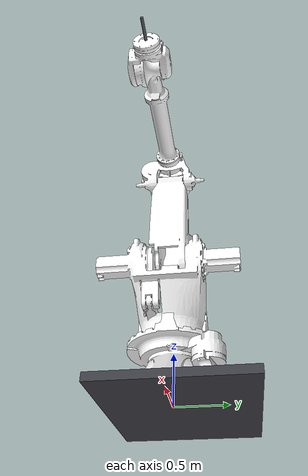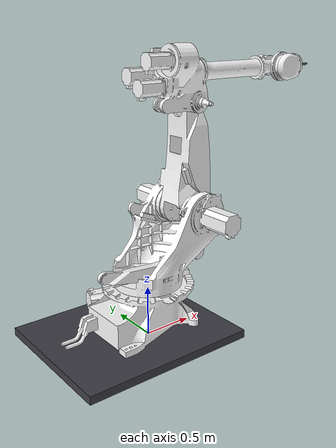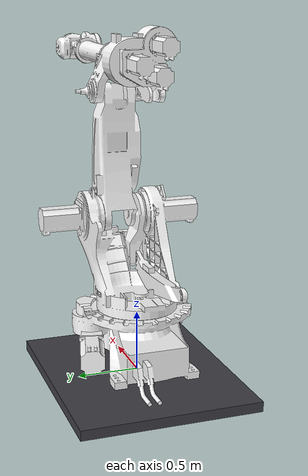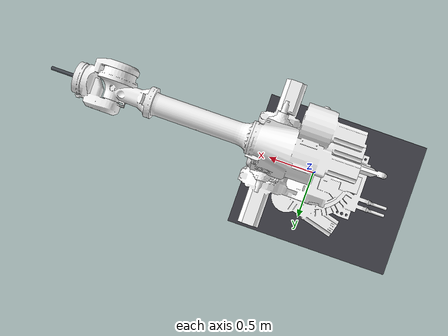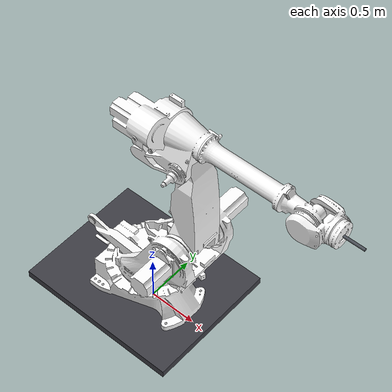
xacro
<?xml version="1.0" encoding="utf-8"?>
<robot
  name="robot_arm3"
  xmlns:xacro="http://www.ros.org/wiki/xacro">
  <xacro:arg
    name="controller_config"
    default="$(find robot_arm3)/config/ros2_controllers_05.yaml" />
  <!-- Tool offsets are relative to the calibrated C4G flange frame. -->
  <xacro:arg name="tcp_xyz" default="0 0 0" />
  <xacro:arg name="tcp_rpy" default="0 0 0" />
  <xacro:arg name="fixture_rod_length" default="0.20" />
  <xacro:arg name="fixture_rod_radius" default="0.013" />
  <xacro:include filename="$(find robot_arm3)/urdf/rod_fixture.xacro" />
  <link
    name="world" />
  <link
    name="c4g_base" />
  <joint
    name="world_to_c4g_base"
    type="fixed">
    <origin
      xyz="0 0 0.08"
      rpy="0 0 0" />
    <parent
      link="world" />
    <child
      link="c4g_base" />
  </joint>
  <link name="pedestal_link">
    <visual>
      <origin xyz="-0.18 0.068663731 -0.04" rpy="0 0 0" />
      <geometry>
        <box size="1.75 1.4243275 0.08" />
      </geometry>
      <material name="pedestal_gray">
        <color rgba="0.24 0.24 0.27 1" />
      </material>
    </visual>
    <collision>
      <origin xyz="-0.18 0.068663731 -0.04" rpy="0 0 0" />
      <geometry>
        <box size="1.75 1.4243275 0.08" />
      </geometry>
    </collision>
  </link>
  <joint name="c4g_base_to_pedestal" type="fixed">
    <parent link="c4g_base" />
    <child link="pedestal_link" />
  </joint>
  <joint
    name="c4g_base_to_base_link"
    type="fixed">
    <origin
      xyz="0 0 0"
      rpy="0 0 3.141592653589793" />
    <parent
      link="c4g_base" />
    <child
      link="base_link" />
  </joint>
  <link
    name="base_link">
    <inertial>
      <origin
        xyz="0.0506232590748008 -0.0548266970438573 0.242008483472295"
        rpy="0 0 0" />
      <mass
        value="216.333805275604" />
      <inertia
        ixx="9.66692923372872"
        ixy="-0.244696571067987"
        ixz="1.32953092256858"
        iyy="16.2820097779157"
        iyz="0.246575547277278"
        izz="17.3203665607122" />
    </inertial>
    <visual>
      <origin
        xyz="0 0 0"
        rpy="0 0 0" />
      <geometry>
        <mesh
          filename="package://robot_arm3/meshes/base_link.STL" />
      </geometry>
      <material
        name="">
        <color
          rgba="1 1 1 1" />
      </material>
    </visual>
    <collision>
      <origin
        xyz="0 0 0"
        rpy="0 0 0" />
      <geometry>
        <mesh
          filename="package://robot_arm3/meshes/base_link.STL" />
      </geometry>
    </collision>
  </link>
  <link
    name="Link_1">
    <inertial>
      <origin
        xyz="-0.325058493715062 0.00618397075804262 -0.425511637199796"
        rpy="0 0 0" />
      <mass
        value="111.586923037547" />
      <inertia
        ixx="12.4549039631623"
        ixy="-0.0871563801452035"
        ixz="-4.75485680618687"
        iyy="12.9548487723321"
        iyz="0.00676482220717287"
        izz="11.5264684996682" />
    </inertial>
    <visual>
      <origin
        xyz="0 0 0"
        rpy="0 0 0" />
      <geometry>
        <mesh
          filename="package://robot_arm3/meshes/Link_1.STL" />
      </geometry>
      <material
        name="">
        <color
          rgba="1 1 1 1" />
      </material>
    </visual>
    <collision>
      <origin
        xyz="0 0 0"
        rpy="0 0 0" />
      <geometry>
        <mesh
          filename="package://robot_arm3/meshes/Link_1.STL" />
      </geometry>
    </collision>
  </link>
  <joint
    name="joint_1"
    type="revolute">
    <origin
      xyz="0 0 0.526"
      rpy="3.1416 0 0" />
    <parent
      link="base_link" />
    <child
      link="Link_1" />
    <axis
      xyz="0 0 1" />
    <limit
      lower="-3.14"
      upper="3.14"
      effort="2000"
      velocity="1" />
  </joint>
  <link
    name="Link_2">
    <inertial>
      <origin
        xyz="0.031571342662649 -0.435757260332822 -0.163306098653328"
        rpy="0 0 0" />
      <mass
        value="27.4443130699897" />
      <inertia
        ixx="3.55366806885427"
        ixy="-0.0051254164443175"
        ixz="0.0440666301114017"
        iyy="0.62115417210786"
        iyz="-0.0409550273093279"
        izz="3.38412801605233" />
    </inertial>
    <visual>
      <origin
        xyz="0 0 0"
        rpy="0 0 0" />
      <geometry>
        <mesh
          filename="package://robot_arm3/meshes/Link_2.STL" />
      </geometry>
      <material
        name="">
        <color
          rgba="1 1 1 1" />
      </material>
    </visual>
    <collision>
      <origin
        xyz="0 0 0"
        rpy="0 0 0" />
      <geometry>
        <mesh
          filename="package://robot_arm3/meshes/Link_2.STL" />
      </geometry>
    </collision>
  </link>
  <joint
    name="joint_2"
    type="revolute">
    <origin
      xyz="-0.46 0.164 -0.614"
      rpy="1.5708 0 3.1416" />
    <parent
      link="Link_1" />
    <child
      link="Link_2" />
    <axis
      xyz="0 0 1" />
    <limit
      lower="-1.3"
      upper="1.3"
      effort="2000"
      velocity="1" />
  </joint>
  <link
    name="Link_3">
    <inertial>
      <origin
        xyz="0.221079386390616 -0.237881703887612 0.216080525737691"
        rpy="0 0 0" />
      <mass
        value="82.8346347307404" />
      <inertia
        ixx="2.68793381829391"
        ixy="0.371511884462949"
        ixz="-0.451791535575442"
        iyy="2.83366677645353"
        iyz="0.290673551230455"
        izz="2.78709509645054" />
    </inertial>
    <visual>
      <origin
        xyz="0 0 0"
        rpy="0 0 0" />
      <geometry>
        <mesh
          filename="package://robot_arm3/meshes/Link_3.STL" />
      </geometry>
      <material
        name="">
        <color
          rgba="1 1 1 1" />
      </material>
    </visual>
    <collision>
      <origin
        xyz="0 0 0"
        rpy="0 0 0" />
      <geometry>
        <mesh
          filename="package://robot_arm3/meshes/Link_3.STL" />
      </geometry>
    </collision>
  </link>
  <joint
    name="joint_7"
    type="revolute">
    <origin
      xyz="0 -1.05 -0.013"
      rpy="-3.1416 0 3.1416" />
    <parent
      link="Link_2" />
    <child
      link="Link_3" />
    <axis
      xyz="0 0 1" />
    <limit
      lower="-3.14"
      upper="3.14"
      effort="2000"
      velocity="1" />
    <dynamics
      damping="0.1"
      friction="0.0" />
  </joint>
  <link
    name="Link_4">
    <inertial>
      <origin
        xyz="-6.82974183821017E-05 -0.0368975826054763 -0.8325256223876"
        rpy="0 0 0" />
      <mass
        value="15.7635262485067" />
      <inertia
        ixx="0.475071298157737"
        ixy="6.4999048005855E-05"
        ixz="1.56982071726133E-05"
        iyy="0.46577831946917"
        iyz="-0.0338725018651429"
        izz="0.115819964731533" />
    </inertial>
    <visual>
      <origin
        xyz="0 0 0"
        rpy="0 0 0" />
      <geometry>
        <mesh
          filename="package://robot_arm3/meshes/Link_4.STL" />
      </geometry>
      <material
        name="">
        <color
          rgba="1 1 1 1" />
      </material>
    </visual>
    <collision>
      <origin
        xyz="0 0 0"
        rpy="0 0 0" />
      <geometry>
        <mesh
          filename="package://robot_arm3/meshes/Link_4.STL" />
      </geometry>
    </collision>
  </link>
  <joint
    name="joint_4"
    type="revolute">
    <origin
      xyz="-0.155 -0.25 0.151"
      rpy="-1.5708 0 -1.5708" />
    <parent
      link="Link_3" />
    <child
      link="Link_4" />
    <axis
      xyz="0 0 1" />
    <limit
      lower="-47.12"
      upper="47.12"
      effort="2000"
      velocity="1" />
  </joint>
  <link
    name="Link_5">
    <inertial>
      <origin
        xyz="-5.74621655591301E-07 0.111056522193111 -0.0691533292600062"
        rpy="0 0 0" />
      <mass
        value="10.599872955139" />
      <inertia
        ixx="0.234707289944283"
        ixy="-1.35752805972676E-07"
        ixz="6.71365643071683E-07"
        iyy="0.175455708338832"
        iyz="0.00474034869122363"
        izz="0.124627798006191" />
    </inertial>
    <visual>
      <origin
        xyz="0 0 0"
        rpy="0 0 0" />
      <geometry>
        <mesh
          filename="package://robot_arm3/meshes/Link_5.STL" />
      </geometry>
      <material
        name="">
        <color
          rgba="1 1 1 1" />
      </material>
    </visual>
    <collision>
      <origin
        xyz="0 0 0"
        rpy="0 0 0" />
      <geometry>
        <mesh
          filename="package://robot_arm3/meshes/Link_5.STL" />
      </geometry>
    </collision>
  </link>
  <joint
    name="joint_5"
    type="revolute">
    <origin
      xyz="0 0.08 -1.05"
      rpy="-1.5708 0 0" />
    <parent
      link="Link_4" />
    <child
      link="Link_5" />
    <axis
      xyz="0 0 1" />
    <limit
      lower="-2.18"
      upper="2.18"
      effort="2000"
      velocity="1" />
  </joint>
  <link
    name="Link_6">
    <inertial>
      <origin
        xyz="-0.000214379735330894 -0.000113813148874417 -0.00366235060272779"
        rpy="0 0 0" />
      <mass
        value="1.11777440271544" />
      <inertia
        ixx="0.00516206301646668"
        ixy="2.0450202245576E-07"
        ixz="-2.30214144734367E-06"
        iyy="0.00515170767564228"
        iyz="3.04297475169887E-06"
        izz="0.0098887895078367" />
    </inertial>
    <visual>
      <origin
        xyz="0 0 0"
        rpy="0 0 0" />
      <geometry>
        <mesh
          filename="package://robot_arm3/meshes/Link_6.STL" />
      </geometry>
      <material
        name="">
        <color
          rgba="1 1 1 1" />
      </material>
    </visual>
    <collision>
      <origin
        xyz="0 0 0"
        rpy="0 0 0" />
      <geometry>
        <mesh
          filename="package://robot_arm3/meshes/Link_6.STL" />
      </geometry>
    </collision>
  </link>
  <joint
    name="joint_6"
    type="revolute">
    <origin
      xyz="0 0.2585 -0.08"
      rpy="1.5708 0 0" />
    <parent
      link="Link_5" />
    <child
      link="Link_6" />
    <axis
      xyz="0 0 1" />
    <limit
      lower="-47.12"
      upper="47.12"
      effort="2000"
      velocity="1" />
  </joint>
  <!-- Link_6 uses the exported CAD frame. This fixed frame matches C4G tool0. -->
  <link name="c4g_flange_link" />
  <joint name="link6_to_c4g_flange" type="fixed">
    <origin xyz="0 0 -0.023506" rpy="0 3.141592653589793 0" />
    <parent link="Link_6" />
    <child link="c4g_flange_link" />
  </joint>
  <xacro:rod_fixture
    flange_xyz="$(arg tcp_xyz)"
    flange_rpy="$(arg tcp_rpy)"
    rod_length="$(arg fixture_rod_length)"
    rod_radius="$(arg fixture_rod_radius)" />
  <link
    name="Link_7">
    <inertial>
      <origin
        xyz="0.16561987974766 0.00169625585748889 -0.0144577166138153"
        rpy="0 0 0" />
      <mass
        value="7.59321189232814" />
      <inertia
        ixx="0.0401319769797729"
        ixy="-0.00412953079473418"
        ixz="-0.00248052767221614"
        iyy="0.197404302795005"
        iyz="-0.000102622916173881"
        izz="0.219173453819442" />
    </inertial>
    <visual>
      <origin
        xyz="0 0 0"
        rpy="0 0 0" />
      <geometry>
        <mesh
          filename="package://robot_arm3/meshes/Link_7.STL" />
      </geometry>
      <material
        name="">
        <color
          rgba="1 1 1 1" />
      </material>
    </visual>
    <collision>
      <origin
        xyz="0 0 0"
        rpy="0 0 0" />
      <geometry>
        <mesh
          filename="package://robot_arm3/meshes/Link_7.STL" />
      </geometry>
    </collision>
  </link>
  <joint
    name="joint_3"
    type="revolute">
    <origin
      xyz="-0.46 -0.164 -0.614"
      rpy="1.5708 -1.5708 0" />
    <parent
      link="Link_1" />
    <child
      link="Link_7" />
    <axis
      xyz="0 0 1" />
    <limit
      lower="-4.0317"
      upper="0.0"
      effort="2000"
      velocity="1" />
  </joint>
  <link
    name="Link_8">
    <inertial>
      <origin
        xyz="-0.0623370873788814 0.503943869795015 -0.030099031406005"
        rpy="0 0 0" />
      <mass
        value="10.5960008934058" />
      <inertia
        ixx="0.819811620009429"
        ixy="-0.0129095512670092"
        ixz="0.000108114911060372"
        iyy="0.0283683801225339"
        iyz="-0.00106314530410718"
        izz="0.836445936541138" />
    </inertial>
    <visual>
      <origin
        xyz="0 0 0"
        rpy="0 0 0" />
      <geometry>
        <mesh
          filename="package://robot_arm3/meshes/Link_8.STL" />
      </geometry>
      <material
        name="">
        <color
          rgba="1 1 1 1" />
      </material>
    </visual>
    <collision>
      <origin
        xyz="0 0 0"
        rpy="0 0 0" />
      <geometry>
        <mesh
          filename="package://robot_arm3/meshes/Link_8.STL" />
      </geometry>
    </collision>
  </link>
  <joint
    name="joint_8"
    type="revolute">
    <origin
      xyz="0.4 0 0.028"
      rpy="0 0 3.1416" />
    <parent
      link="Link_7" />
    <child
      link="Link_8" />
    <axis
      xyz="0 0 1" />
    <limit
      lower="-3.14"
      upper="3.14"
      effort="2000"
      velocity="1" />
    <dynamics
      damping="0.1"
      friction="0.0" />
  </joint>
  <ros2_control
    name="GazeboSimSystem"
    type="system">
    <hardware>
      <plugin>gz_ros2_control/GazeboSimSystem</plugin>
    </hardware>
    <joint name="joint_1">
      <command_interface name="position" />
      <state_interface name="position" />
      <state_interface name="velocity" />
    </joint>
    <joint name="joint_2">
      <command_interface name="position" />
      <state_interface name="position" />
      <state_interface name="velocity" />
    </joint>
    <joint name="joint_7">
      <command_interface name="position" />
      <state_interface name="position" />
      <state_interface name="velocity" />
    </joint>
    <joint name="joint_4">
      <command_interface name="position" />
      <state_interface name="position" />
      <state_interface name="velocity" />
    </joint>
    <joint name="joint_5">
      <command_interface name="position" />
      <state_interface name="position" />
      <state_interface name="velocity" />
    </joint>
    <joint name="joint_6">
      <command_interface name="position" />
      <state_interface name="position" />
      <state_interface name="velocity" />
    </joint>
    <joint name="joint_3">
      <command_interface name="position" />
      <state_interface name="position" />
      <state_interface name="velocity" />
    </joint>
    <joint name="joint_8">
      <command_interface name="position" />
      <state_interface name="position" />
      <state_interface name="velocity" />
    </joint>
  </ros2_control>
  <gazebo>
    <plugin
      filename="gz_ros2_control-system"
      name="gz_ros2_control::GazeboSimROS2ControlPlugin">
      <parameters>$(arg controller_config)</parameters>
      <position_proportional_gain>1000.0</position_proportional_gain>
    </plugin>
    <plugin
      filename="librobot_arm3_joint_reset_system.so"
      name="robot_arm3::JointResetSystem">
      <reset_service>/gazebo/reset_robot_joints</reset_service>
      <!-- PATH editing keeps the paused reset above.  C4G teleport uses
           this separate PreUpdate-only service and never pauses the World. -->
      <mirror_reset_service>/gazebo/reset_robot_joints_for_mirror</mirror_reset_service>
      <controller_switch_service>/controller_manager/switch_controller</controller_switch_service>
      <controller_list_service>/controller_manager/list_controllers</controller_list_service>
      <trajectory_controller>arm_controller</trajectory_controller>
      <passive_controller>internal_passive_controller</passive_controller>
      <reset_apply_tolerance>0.001</reset_apply_tolerance>
      <reset_settle_duration_s>0.1</reset_settle_duration_s>
      <reset_verify_timeout_s>1.0</reset_verify_timeout_s>
    </plugin>
  </gazebo>
</robot>

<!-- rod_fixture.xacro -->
<robot xmlns:xacro="http://www.ros.org/wiki/xacro">
  <xacro:macro name="rod_fixture" params="flange_xyz flange_rpy rod_length rod_radius">
    <xacro:property name="rod_half_length" value="${float(rod_length) / 2.0}" />
    <!-- Solid steel approximation; density is 7850 kg/m^3. -->
    <xacro:property name="rod_mass"
                    value="${7850.0 * 3.141592653589793 * float(rod_radius) * float(rod_radius) * float(rod_length)}" />
    <xacro:property name="rod_inertia_transverse"
                    value="${rod_mass * (3.0 * float(rod_radius) * float(rod_radius) + float(rod_length) * float(rod_length)) / 12.0}" />
    <xacro:property name="rod_inertia_axial"
                    value="${rod_mass * float(rod_radius) * float(rod_radius) / 2.0}" />

    <link name="fixture_rod_link">
      <inertial>
        <origin xyz="0 0 ${rod_half_length}" rpy="0 0 0" />
        <mass value="${rod_mass}" />
        <inertia ixx="${rod_inertia_transverse}" ixy="0" ixz="0"
                 iyy="${rod_inertia_transverse}" iyz="0" izz="${rod_inertia_axial}" />
      </inertial>
      <visual>
        <origin xyz="0 0 ${rod_half_length}" rpy="0 0 0" />
        <geometry>
          <cylinder radius="${rod_radius}" length="${rod_length}" />
        </geometry>
        <material name="fixture_steel">
          <color rgba="0.30 0.32 0.35 1" />
        </material>
      </visual>
      <collision>
        <origin xyz="0 0 ${rod_half_length}" rpy="0 0 0" />
        <geometry>
          <cylinder radius="${rod_radius}" length="${rod_length}" />
        </geometry>
      </collision>
    </link>
    <joint name="flange_to_fixture_rod" type="fixed">
      <origin xyz="${flange_xyz}" rpy="${flange_rpy}" />
      <parent link="c4g_flange_link" />
      <child link="fixture_rod_link" />
    </joint>

    <!-- The free endpoint of the 570 mm bar is the active tool TCP. -->
    <link name="tcp_link" />
    <joint name="fixture_rod_to_tcp" type="fixed">
      <origin xyz="0 0 ${rod_length}" rpy="0 0 0" />
      <parent link="fixture_rod_link" />
      <child link="tcp_link" />
    </joint>
  </xacro:macro>
</robot>
